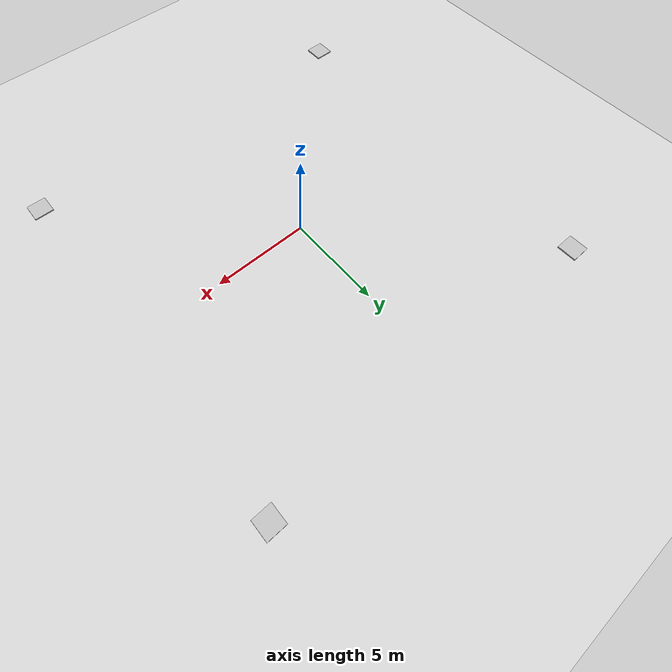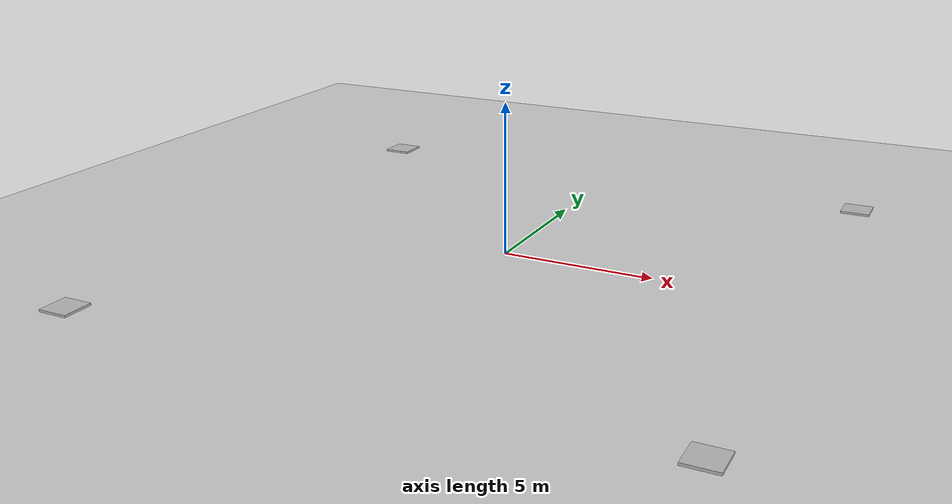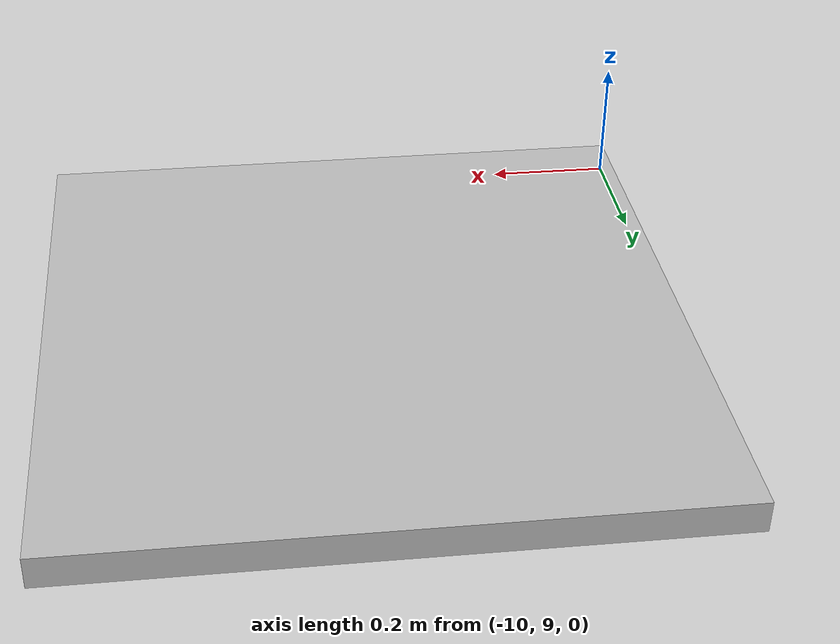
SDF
<sdf version="1.5">
 <world name="default">
  <include><uri>model://sun</uri></include>
  <include><uri>model://ground_plane</uri></include>
  <include><uri>model://bottom_left_corner</uri><pose>-9.5 9.5 0 0 0 0</pose></include>
  <include><uri>model://bottom_right_corner</uri><pose>-9.5 -9.5 0 0 0 0</pose></include>
  <include><uri>model://top_left_corner</uri><pose>9.5 9.5 0 0 0 0</pose></include>
  <include><uri>model://top_right_corner</uri><pose>9.5 -9.5 0 0 0 0</pose></include>
  <physics name="default_physics" default="0" type="ode">
   <gravity>0 0 -9.8066</gravity>
   <ode>
    <solver>
     <type>quick</type>
     <iters>10</iters>
     <sor>1.3</sor>
     <use_dynamic_moi_rescaling>0</use_dynamic_moi_rescaling>
    </solver>
    <constraints>
     <cfm>0</cfm>
     <erp>0.2</erp>
     <contact_max_correcting_vel>100</contact_max_correcting_vel>
     <contact_surface_layer>0.001</contact_surface_layer>
    </constraints>
   </ode>
   <max_step_size>0.002</max_step_size>
   <real_time_factor>1</real_time_factor>
   <real_time_update_rate>500</real_time_update_rate>
   <magnetic_field>6e-06 2.3e-05 -4.2e-05</magnetic_field>
  </physics>
 </world>
</sdf>

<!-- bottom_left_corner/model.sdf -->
<sdf version="1.5">
  <model name="bottom_left_corner">
    <static>true</static>
    <link name="link">
      <collision name="collision">
        <geometry>
          <box>
            <size>1 1 .1</size>
          </box>
        </geometry>
      </collision>
      <visual name="visual">
        <cast_shadows>false</cast_shadows>
        <geometry>
          <box>
            <size>1 1 .1</size>
          </box>
        </geometry>
        <material>
          <script>
            <uri>model://bottom_left_corner/materials/scripts</uri>
            <uri>model://bottom_left_corner/materials/textures</uri>
            <name>vrc/bottom_left_corner_grid</name>
          </script>
        </material>
      </visual>
    </link>
  </model>
</sdf>

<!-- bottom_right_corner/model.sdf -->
<sdf version="1.5">
  <model name="bottom_right_corner">
    <static>true</static>
    <link name="link">
      <collision name="collision">
        <geometry>
          <box>
            <size>1 1 .1</size>
          </box>
        </geometry>
      </collision>
      <visual name="visual">
        <cast_shadows>false</cast_shadows>
        <geometry>
          <box>
            <size>1 1 .1</size>
          </box>
        </geometry>
        <material>
          <script>
            <uri>model://bottom_right_corner/materials/scripts</uri>
            <uri>model://bottom_right_corner/materials/textures</uri>
            <name>vrc/bottom_right_corner_grid</name>
          </script>
        </material>
      </visual>
    </link>
  </model>
</sdf>

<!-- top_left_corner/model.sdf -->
<sdf version="1.5">
  <model name="top_left_corner">
    <static>true</static>
    <link name="link">
      <collision name="collision">
        <geometry>
          <box>
            <size>1 1 .1</size>
          </box>
        </geometry>
      </collision>
      <visual name="visual">
        <cast_shadows>false</cast_shadows>
        <geometry>
          <box>
            <size>1 1 .1</size>
          </box>
        </geometry>
        <material>
          <script>
            <uri>model://top_left_corner/materials/scripts</uri>
            <uri>model://top_left_corner/materials/textures</uri>
            <name>vrc/top_left_corner_grid</name>
          </script>
        </material>
      </visual>
    </link>
  </model>
</sdf>

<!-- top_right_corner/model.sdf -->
<sdf version="1.5">
  <model name="top_right_corner">
    <static>true</static>
    <link name="link">
      <collision name="collision">
        <geometry>
          <box>
            <size>1 1 .1</size>
          </box>
        </geometry>
      </collision>
      <visual name="visual">
        <cast_shadows>false</cast_shadows>
        <geometry>
          <box>
            <size>1 1 .1</size>
          </box>
        </geometry>
        <material>
          <script>
            <uri>model://top_right_corner/materials/scripts</uri>
            <uri>model://top_right_corner/materials/textures</uri>
            <name>vrc/top_right_corner_grid</name>
          </script>
        </material>
      </visual>
    </link>
  </model>
</sdf>
